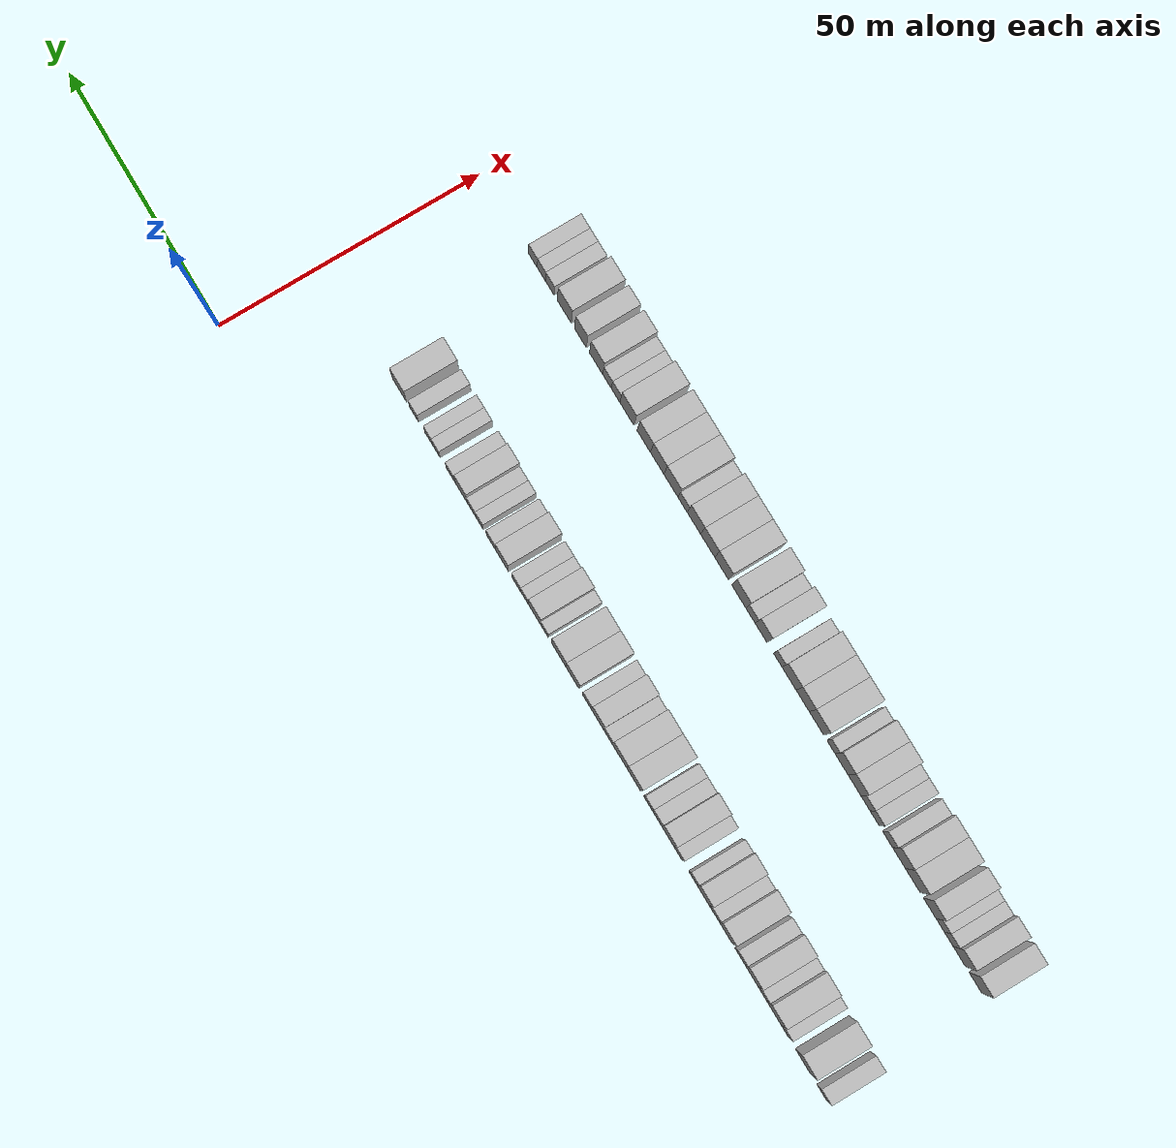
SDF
<sdf version="1.6">
 <world name="default">
  <model name="building_61">
   <static>1</static>
   <pose>25.0000 -156.1294 0 0.000000 0.000000 0.000000</pose>
   <link name="link">
    <pose>0 0 3.00 0 0 0</pose>
    <collision name="collision"><geometry><box><size>10.0000 2.9680 6.0000</size></box></geometry></collision>
    <visual name="visual">
     <cast_shadows>0</cast_shadows>
     <geometry><box><size>10.0000 2.9680 6.0000</size></box></geometry>
     <material>
      <script>
       <uri>model://HANNAS_wall/materials/scripts</uri>
       <uri>model://HANNAS_wall/materials/textures</uri>
       <name>vrc/HANNAS_wall</name>
      </script>
     </material>
    </visual>
   </link>
  </model>
  <model name="building_62">
   <static>1</static>
   <pose>25.0000 -150.4250 0 0.000000 0.000000 0.000000</pose>
   <link name="link">
    <pose>0 0 4.50 0 0 0</pose>
    <collision name="collision"><geometry><box><size>10.0000 4.4408 9.0000</size></box></geometry></collision>
    <visual name="visual">
     <cast_shadows>0</cast_shadows>
     <geometry><box><size>10.0000 4.4408 9.0000</size></box></geometry>
     <material>
      <script>
       <uri>model://HANNAS_wall/materials/scripts</uri>
       <uri>model://HANNAS_wall/materials/textures</uri>
       <name>vrc/HANNAS_wall</name>
      </script>
     </material>
    </visual>
   </link>
  </model>
  <model name="building_63">
   <static>1</static>
   <pose>25.0000 -144.9564 0 0.000000 0.000000 0.000000</pose>
   <link name="link">
    <pose>0 0 3.00 0 0 0</pose>
    <collision name="collision"><geometry><box><size>10.0000 2.4964 6.0000</size></box></geometry></collision>
    <visual name="visual">
     <cast_shadows>0</cast_shadows>
     <geometry><box><size>10.0000 2.4964 6.0000</size></box></geometry>
     <material>
      <script>
       <uri>model://HANNAS_wall/materials/scripts</uri>
       <uri>model://HANNAS_wall/materials/textures</uri>
       <name>vrc/HANNAS_wall</name>
      </script>
     </material>
    </visual>
   </link>
  </model>
  <model name="building_64">
   <static>1</static>
   <pose>25.0000 -141.5577 0 0.000000 0.000000 0.000000</pose>
   <link name="link">
    <pose>0 0 4.50 0 0 0</pose>
    <collision name="collision"><geometry><box><size>10.0000 4.3011 9.0000</size></box></geometry></collision>
    <visual name="visual">
     <cast_shadows>0</cast_shadows>
     <geometry><box><size>10.0000 4.3011 9.0000</size></box></geometry>
     <material>
      <script>
       <uri>model://HANNAS_wall/materials/scripts</uri>
       <uri>model://HANNAS_wall/materials/textures</uri>
       <name>vrc/HANNAS_wall</name>
      </script>
     </material>
    </visual>
   </link>
  </model>
  <model name="building_65">
   <static>1</static>
   <pose>25.0000 -138.0696 0 0.000000 0.000000 0.000000</pose>
   <link name="link">
    <pose>0 0 3.00 0 0 0</pose>
    <collision name="collision"><geometry><box><size>10.0000 2.6751 6.0000</size></box></geometry></collision>
    <visual name="visual">
     <cast_shadows>0</cast_shadows>
     <geometry><box><size>10.0000 2.6751 6.0000</size></box></geometry>
     <material>
      <script>
       <uri>model://HANNAS_wall/materials/scripts</uri>
       <uri>model://HANNAS_wall/materials/textures</uri>
       <name>vrc/HANNAS_wall</name>
      </script>
     </material>
    </visual>
   </link>
  </model>
  <model name="building_66">
   <static>1</static>
   <pose>25.0000 -134.7465 0 0.000000 0.000000 0.000000</pose>
   <link name="link">
    <pose>0 0 4.50 0 0 0</pose>
    <collision name="collision"><geometry><box><size>10.0000 3.9710 9.0000</size></box></geometry></collision>
    <visual name="visual">
     <cast_shadows>0</cast_shadows>
     <geometry><box><size>10.0000 3.9710 9.0000</size></box></geometry>
     <material>
      <script>
       <uri>model://HANNAS_wall/materials/scripts</uri>
       <uri>model://HANNAS_wall/materials/textures</uri>
       <name>vrc/HANNAS_wall</name>
      </script>
     </material>
    </visual>
   </link>
  </model>
  <model name="building_67">
   <static>1</static>
   <pose>25.0000 -131.3175 0 0.000000 0.000000 0.000000</pose>
   <link name="link">
    <pose>0 0 3.00 0 0 0</pose>
    <collision name="collision"><geometry><box><size>10.0000 2.8872 6.0000</size></box></geometry></collision>
    <visual name="visual">
     <cast_shadows>0</cast_shadows>
     <geometry><box><size>10.0000 2.8872 6.0000</size></box></geometry>
     <material>
      <script>
       <uri>model://HANNAS_wall/materials/scripts</uri>
       <uri>model://HANNAS_wall/materials/textures</uri>
       <name>vrc/HANNAS_wall</name>
      </script>
     </material>
    </visual>
   </link>
  </model>
  <model name="building_68">
   <static>1</static>
   <pose>25.0000 -126.8277 0 0.000000 0.000000 0.000000</pose>
   <link name="link">
    <pose>0 0 4.50 0 0 0</pose>
    <collision name="collision"><geometry><box><size>10.0000 4.0923 9.0000</size></box></geometry></collision>
    <visual name="visual">
     <cast_shadows>0</cast_shadows>
     <geometry><box><size>10.0000 4.0923 9.0000</size></box></geometry>
     <material>
      <script>
       <uri>model://HANNAS_wall/materials/scripts</uri>
       <uri>model://HANNAS_wall/materials/textures</uri>
       <name>vrc/HANNAS_wall</name>
      </script>
     </material>
    </visual>
   </link>
  </model>
  <model name="building_69">
   <static>1</static>
   <pose>25.0000 -123.3642 0 0.000000 0.000000 0.000000</pose>
   <link name="link">
    <pose>0 0 3.00 0 0 0</pose>
    <collision name="collision"><geometry><box><size>10.0000 2.8347 6.0000</size></box></geometry></collision>
    <visual name="visual">
     <cast_shadows>0</cast_shadows>
     <geometry><box><size>10.0000 2.8347 6.0000</size></box></geometry>
     <material>
      <script>
       <uri>model://HANNAS_wall/materials/scripts</uri>
       <uri>model://HANNAS_wall/materials/textures</uri>
       <name>vrc/HANNAS_wall</name>
      </script>
     </material>
    </visual>
   </link>
  </model>
  <model name="building_70">
   <static>1</static>
   <pose>25.0000 -120.0395 0 0.000000 0.000000 0.000000</pose>
   <link name="link">
    <pose>0 0 4.50 0 0 0</pose>
    <collision name="collision"><geometry><box><size>10.0000 3.8146 9.0000</size></box></geometry></collision>
    <visual name="visual">
     <cast_shadows>0</cast_shadows>
     <geometry><box><size>10.0000 3.8146 9.0000</size></box></geometry>
     <material>
      <script>
       <uri>model://HANNAS_wall/materials/scripts</uri>
       <uri>model://HANNAS_wall/materials/textures</uri>
       <name>vrc/HANNAS_wall</name>
      </script>
     </material>
    </visual>
   </link>
  </model>
  <model name="building_71">
   <static>1</static>
   <pose>25.0000 -116.9184 0 0.000000 0.000000 0.000000</pose>
   <link name="link">
    <pose>0 0 3.00 0 0 0</pose>
    <collision name="collision"><geometry><box><size>10.0000 2.4276 6.0000</size></box></geometry></collision>
    <visual name="visual">
     <cast_shadows>0</cast_shadows>
     <geometry><box><size>10.0000 2.4276 6.0000</size></box></geometry>
     <material>
      <script>
       <uri>model://HANNAS_wall/materials/scripts</uri>
       <uri>model://HANNAS_wall/materials/textures</uri>
       <name>vrc/HANNAS_wall</name>
      </script>
     </material>
    </visual>
   </link>
  </model>
  <model name="building_72">
   <static>1</static>
   <pose>25.0000 -112.4256 0 0.000000 0.000000 0.000000</pose>
   <link name="link">
    <pose>0 0 3.00 0 0 0</pose>
    <collision name="collision"><geometry><box><size>10.0000 2.5580 6.0000</size></box></geometry></collision>
    <visual name="visual">
     <cast_shadows>0</cast_shadows>
     <geometry><box><size>10.0000 2.5580 6.0000</size></box></geometry>
     <material>
      <script>
       <uri>model://HANNAS_wall/materials/scripts</uri>
       <uri>model://HANNAS_wall/materials/textures</uri>
       <name>vrc/HANNAS_wall</name>
      </script>
     </material>
    </visual>
   </link>
  </model>
  <model name="building_73">
   <static>1</static>
   <pose>25.0000 -109.1934 0 0.000000 0.000000 0.000000</pose>
   <link name="link">
    <pose>0 0 4.50 0 0 0</pose>
    <collision name="collision"><geometry><box><size>10.0000 3.9063 9.0000</size></box></geometry></collision>
    <visual name="visual">
     <cast_shadows>0</cast_shadows>
     <geometry><box><size>10.0000 3.9063 9.0000</size></box></geometry>
     <material>
      <script>
       <uri>model://HANNAS_wall/materials/scripts</uri>
       <uri>model://HANNAS_wall/materials/textures</uri>
       <name>vrc/HANNAS_wall</name>
      </script>
     </material>
    </visual>
   </link>
  </model>
  <model name="building_74">
   <static>1</static>
   <pose>25.0000 -105.8034 0 0.000000 0.000000 0.000000</pose>
   <link name="link">
    <pose>0 0 3.00 0 0 0</pose>
    <collision name="collision"><geometry><box><size>10.0000 2.8739 6.0000</size></box></geometry></collision>
    <visual name="visual">
     <cast_shadows>0</cast_shadows>
     <geometry><box><size>10.0000 2.8739 6.0000</size></box></geometry>
     <material>
      <script>
       <uri>model://HANNAS_wall/materials/scripts</uri>
       <uri>model://HANNAS_wall/materials/textures</uri>
       <name>vrc/HANNAS_wall</name>
      </script>
     </material>
    </visual>
   </link>
  </model>
  <model name="building_75">
   <static>1</static>
   <pose>25.0000 -103.0933 0 0.000000 0.000000 0.000000</pose>
   <link name="link">
    <pose>0 0 3.00 0 0 0</pose>
    <collision name="collision"><geometry><box><size>10.0000 2.5462 6.0000</size></box></geometry></collision>
    <visual name="visual">
     <cast_shadows>0</cast_shadows>
     <geometry><box><size>10.0000 2.5462 6.0000</size></box></geometry>
     <material>
      <script>
       <uri>model://HANNAS_wall/materials/scripts</uri>
       <uri>model://HANNAS_wall/materials/textures</uri>
       <name>vrc/HANNAS_wall</name>
      </script>
     </material>
    </visual>
   </link>
  </model>
  <model name="building_76">
   <static>1</static>
   <pose>25.0000 -98.6434 0 0.000000 0.000000 0.000000</pose>
   <link name="link">
    <pose>0 0 4.50 0 0 0</pose>
    <collision name="collision"><geometry><box><size>10.0000 4.3537 9.0000</size></box></geometry></collision>
    <visual name="visual">
     <cast_shadows>0</cast_shadows>
     <geometry><box><size>10.0000 4.3537 9.0000</size></box></geometry>
     <material>
      <script>
       <uri>model://HANNAS_wall/materials/scripts</uri>
       <uri>model://HANNAS_wall/materials/textures</uri>
       <name>vrc/HANNAS_wall</name>
      </script>
     </material>
    </visual>
   </link>
  </model>
  <model name="building_77">
   <static>1</static>
   <pose>25.0000 -94.2335 0 0.000000 0.000000 0.000000</pose>
   <link name="link">
    <pose>0 0 4.50 0 0 0</pose>
    <collision name="collision"><geometry><box><size>10.0000 4.4661 9.0000</size></box></geometry></collision>
    <visual name="visual">
     <cast_shadows>0</cast_shadows>
     <geometry><box><size>10.0000 4.4661 9.0000</size></box></geometry>
     <material>
      <script>
       <uri>model://HANNAS_wall/materials/scripts</uri>
       <uri>model://HANNAS_wall/materials/textures</uri>
       <name>vrc/HANNAS_wall</name>
      </script>
     </material>
    </visual>
   </link>
  </model>
  <model name="building_78">
   <static>1</static>
   <pose>25.0000 -90.6782 0 0.000000 0.000000 0.000000</pose>
   <link name="link">
    <pose>0 0 3.00 0 0 0</pose>
    <collision name="collision"><geometry><box><size>10.0000 2.6446 6.0000</size></box></geometry></collision>
    <visual name="visual">
     <cast_shadows>0</cast_shadows>
     <geometry><box><size>10.0000 2.6446 6.0000</size></box></geometry>
     <material>
      <script>
       <uri>model://HANNAS_wall/materials/scripts</uri>
       <uri>model://HANNAS_wall/materials/textures</uri>
       <name>vrc/HANNAS_wall</name>
      </script>
     </material>
    </visual>
   </link>
  </model>
  <model name="building_79">
   <static>1</static>
   <pose>25.0000 -87.4452 0 0.000000 0.000000 0.000000</pose>
   <link name="link">
    <pose>0 0 4.50 0 0 0</pose>
    <collision name="collision"><geometry><box><size>10.0000 3.8213 9.0000</size></box></geometry></collision>
    <visual name="visual">
     <cast_shadows>0</cast_shadows>
     <geometry><box><size>10.0000 3.8213 9.0000</size></box></geometry>
     <material>
      <script>
       <uri>model://HANNAS_wall/materials/scripts</uri>
       <uri>model://HANNAS_wall/materials/textures</uri>
       <name>vrc/HANNAS_wall</name>
      </script>
     </material>
    </visual>
   </link>
  </model>
  <model name="building_80">
   <static>1</static>
   <pose>25.0000 -84.1160 0 0.000000 0.000000 0.000000</pose>
   <link name="link">
    <pose>0 0 3.00 0 0 0</pose>
    <collision name="collision"><geometry><box><size>10.0000 2.8373 6.0000</size></box></geometry></collision>
    <visual name="visual">
     <cast_shadows>0</cast_shadows>
     <geometry><box><size>10.0000 2.8373 6.0000</size></box></geometry>
     <material>
      <script>
       <uri>model://HANNAS_wall/materials/scripts</uri>
       <uri>model://HANNAS_wall/materials/textures</uri>
       <name>vrc/HANNAS_wall</name>
      </script>
     </material>
    </visual>
   </link>
  </model>
  <model name="building_81">
   <static>1</static>
   <pose>25.0000 -79.6131 0 0.000000 0.000000 0.000000</pose>
   <link name="link">
    <pose>0 0 4.50 0 0 0</pose>
    <collision name="collision"><geometry><box><size>10.0000 4.1684 9.0000</size></box></geometry></collision>
    <visual name="visual">
     <cast_shadows>0</cast_shadows>
     <geometry><box><size>10.0000 4.1684 9.0000</size></box></geometry>
     <material>
      <script>
       <uri>model://HANNAS_wall/materials/scripts</uri>
       <uri>model://HANNAS_wall/materials/textures</uri>
       <name>vrc/HANNAS_wall</name>
      </script>
     </material>
    </visual>
   </link>
  </model>
  <model name="building_82">
   <static>1</static>
   <pose>25.0000 -75.2812 0 0.000000 0.000000 0.000000</pose>
   <link name="link">
    <pose>0 0 4.50 0 0 0</pose>
    <collision name="collision"><geometry><box><size>10.0000 4.4954 9.0000</size></box></geometry></collision>
    <visual name="visual">
     <cast_shadows>0</cast_shadows>
     <geometry><box><size>10.0000 4.4954 9.0000</size></box></geometry>
     <material>
      <script>
       <uri>model://HANNAS_wall/materials/scripts</uri>
       <uri>model://HANNAS_wall/materials/textures</uri>
       <name>vrc/HANNAS_wall</name>
      </script>
     </material>
    </visual>
   </link>
  </model>
  <model name="building_83">
   <static>1</static>
   <pose>25.0000 -70.8143 0 0.000000 0.000000 0.000000</pose>
   <link name="link">
    <pose>0 0 3.00 0 0 0</pose>
    <collision name="collision"><geometry><box><size>10.0000 2.4383 6.0000</size></box></geometry></collision>
    <visual name="visual">
     <cast_shadows>0</cast_shadows>
     <geometry><box><size>10.0000 2.4383 6.0000</size></box></geometry>
     <material>
      <script>
       <uri>model://HANNAS_wall/materials/scripts</uri>
       <uri>model://HANNAS_wall/materials/textures</uri>
       <name>vrc/HANNAS_wall</name>
      </script>
     </material>
    </visual>
   </link>
  </model>
  <model name="building_84">
   <static>1</static>
   <pose>25.0000 -67.6810 0 0.000000 0.000000 0.000000</pose>
   <link name="link">
    <pose>0 0 4.50 0 0 0</pose>
    <collision name="collision"><geometry><box><size>10.0000 3.8284 9.0000</size></box></geometry></collision>
    <visual name="visual">
     <cast_shadows>0</cast_shadows>
     <geometry><box><size>10.0000 3.8284 9.0000</size></box></geometry>
     <material>
      <script>
       <uri>model://HANNAS_wall/materials/scripts</uri>
       <uri>model://HANNAS_wall/materials/textures</uri>
       <name>vrc/HANNAS_wall</name>
      </script>
     </material>
    </visual>
   </link>
  </model>
  <model name="building_85">
   <static>1</static>
   <pose>25.0000 -64.5476 0 0.000000 0.000000 0.000000</pose>
   <link name="link">
    <pose>0 0 3.00 0 0 0</pose>
    <collision name="collision"><geometry><box><size>10.0000 2.4383 6.0000</size></box></geometry></collision>
    <visual name="visual">
     <cast_shadows>0</cast_shadows>
     <geometry><box><size>10.0000 2.4383 6.0000</size></box></geometry>
     <material>
      <script>
       <uri>model://HANNAS_wall/materials/scripts</uri>
       <uri>model://HANNAS_wall/materials/textures</uri>
       <name>vrc/HANNAS_wall</name>
      </script>
     </material>
    </visual>
   </link>
  </model>
  <model name="building_86">
   <static>1</static>
   <pose>25.0000 -61.9254 0 0.000000 0.000000 0.000000</pose>
   <link name="link">
    <pose>0 0 3.00 0 0 0</pose>
    <collision name="collision"><geometry><box><size>10.0000 2.8062 6.0000</size></box></geometry></collision>
    <visual name="visual">
     <cast_shadows>0</cast_shadows>
     <geometry><box><size>10.0000 2.8062 6.0000</size></box></geometry>
     <material>
      <script>
       <uri>model://HANNAS_wall/materials/scripts</uri>
       <uri>model://HANNAS_wall/materials/textures</uri>
       <name>vrc/HANNAS_wall</name>
      </script>
     </material>
    </visual>
   </link>
  </model>
  <model name="building_87">
   <static>1</static>
   <pose>25.0000 -57.5002 0 0.000000 0.000000 0.000000</pose>
   <link name="link">
    <pose>0 0 4.50 0 0 0</pose>
    <collision name="collision"><geometry><box><size>10.0000 4.0442 9.0000</size></box></geometry></collision>
    <visual name="visual">
     <cast_shadows>0</cast_shadows>
     <geometry><box><size>10.0000 4.0442 9.0000</size></box></geometry>
     <material>
      <script>
       <uri>model://HANNAS_wall/materials/scripts</uri>
       <uri>model://HANNAS_wall/materials/textures</uri>
       <name>vrc/HANNAS_wall</name>
      </script>
     </material>
    </visual>
   </link>
  </model>
  <model name="building_88">
   <static>1</static>
   <pose>25.0000 -53.9953 0 0.000000 0.000000 0.000000</pose>
   <link name="link">
    <pose>0 0 3.00 0 0 0</pose>
    <collision name="collision"><geometry><box><size>10.0000 2.9656 6.0000</size></box></geometry></collision>
    <visual name="visual">
     <cast_shadows>0</cast_shadows>
     <geometry><box><size>10.0000 2.9656 6.0000</size></box></geometry>
     <material>
      <script>
       <uri>model://HANNAS_wall/materials/scripts</uri>
       <uri>model://HANNAS_wall/materials/textures</uri>
       <name>vrc/HANNAS_wall</name>
      </script>
     </material>
    </visual>
   </link>
  </model>
  <model name="building_89">
   <static>1</static>
   <pose>25.0000 -50.2899 0 0.000000 0.000000 0.000000</pose>
   <link name="link">
    <pose>0 0 3.00 0 0 0</pose>
    <collision name="collision"><geometry><box><size>10.0000 2.4452 6.0000</size></box></geometry></collision>
    <visual name="visual">
     <cast_shadows>0</cast_shadows>
     <geometry><box><size>10.0000 2.4452 6.0000</size></box></geometry>
     <material>
      <script>
       <uri>model://HANNAS_wall/materials/scripts</uri>
       <uri>model://HANNAS_wall/materials/textures</uri>
       <name>vrc/HANNAS_wall</name>
      </script>
     </material>
    </visual>
   </link>
  </model>
  <model name="building_90">
   <static>1</static>
   <pose>25.0000 -47.7141 0 0.000000 0.000000 0.000000</pose>
   <link name="link">
    <pose>0 0 3.00 0 0 0</pose>
    <collision name="collision"><geometry><box><size>10.0000 2.7063 6.0000</size></box></geometry></collision>
    <visual name="visual">
     <cast_shadows>0</cast_shadows>
     <geometry><box><size>10.0000 2.7063 6.0000</size></box></geometry>
     <material>
      <script>
       <uri>model://HANNAS_wall/materials/scripts</uri>
       <uri>model://HANNAS_wall/materials/textures</uri>
       <name>vrc/HANNAS_wall</name>
      </script>
     </material>
    </visual>
   </link>
  </model>
  <model name="building_91">
   <static>1</static>
   <pose>25.0000 -44.4974 0 0.000000 0.000000 0.000000</pose>
   <link name="link">
    <pose>0 0 4.50 0 0 0</pose>
    <collision name="collision"><geometry><box><size>10.0000 3.7271 9.0000</size></box></geometry></collision>
    <visual name="visual">
     <cast_shadows>0</cast_shadows>
     <geometry><box><size>10.0000 3.7271 9.0000</size></box></geometry>
     <material>
      <script>
       <uri>model://HANNAS_wall/materials/scripts</uri>
       <uri>model://HANNAS_wall/materials/textures</uri>
       <name>vrc/HANNAS_wall</name>
      </script>
     </material>
    </visual>
   </link>
  </model>
  <model name="building_92">
   <static>1</static>
   <pose>25.0000 -41.1567 0 0.000000 0.000000 0.000000</pose>
   <link name="link">
    <pose>0 0 3.00 0 0 0</pose>
    <collision name="collision"><geometry><box><size>10.0000 2.9543 6.0000</size></box></geometry></collision>
    <visual name="visual">
     <cast_shadows>0</cast_shadows>
     <geometry><box><size>10.0000 2.9543 6.0000</size></box></geometry>
     <material>
      <script>
       <uri>model://HANNAS_wall/materials/scripts</uri>
       <uri>model://HANNAS_wall/materials/textures</uri>
       <name>vrc/HANNAS_wall</name>
      </script>
     </material>
    </visual>
   </link>
  </model>
  <model name="building_93">
   <static>1</static>
   <pose>25.0000 -36.4481 0 0.000000 0.000000 0.000000</pose>
   <link name="link">
    <pose>0 0 3.00 0 0 0</pose>
    <collision name="collision"><geometry><box><size>10.0000 2.4631 6.0000</size></box></geometry></collision>
    <visual name="visual">
     <cast_shadows>0</cast_shadows>
     <geometry><box><size>10.0000 2.4631 6.0000</size></box></geometry>
     <material>
      <script>
       <uri>model://HANNAS_wall/materials/scripts</uri>
       <uri>model://HANNAS_wall/materials/textures</uri>
       <name>vrc/HANNAS_wall</name>
      </script>
     </material>
    </visual>
   </link>
  </model>
  <model name="building_94">
   <static>1</static>
   <pose>25.0000 -34.0037 0 0.000000 0.000000 0.000000</pose>
   <link name="link">
    <pose>0 0 3.00 0 0 0</pose>
    <collision name="collision"><geometry><box><size>10.0000 2.4257 6.0000</size></box></geometry></collision>
    <visual name="visual">
     <cast_shadows>0</cast_shadows>
     <geometry><box><size>10.0000 2.4257 6.0000</size></box></geometry>
     <material>
      <script>
       <uri>model://HANNAS_wall/materials/scripts</uri>
       <uri>model://HANNAS_wall/materials/textures</uri>
       <name>vrc/HANNAS_wall</name>
      </script>
     </material>
    </visual>
   </link>
  </model>
  <model name="building_95">
   <static>1</static>
   <pose>25.0000 -29.3532 0 0.000000 0.000000 0.000000</pose>
   <link name="link">
    <pose>0 0 3.00 0 0 0</pose>
    <collision name="collision"><geometry><box><size>10.0000 2.8752 6.0000</size></box></geometry></collision>
    <visual name="visual">
     <cast_shadows>0</cast_shadows>
     <geometry><box><size>10.0000 2.8752 6.0000</size></box></geometry>
     <material>
      <script>
       <uri>model://HANNAS_wall/materials/scripts</uri>
       <uri>model://HANNAS_wall/materials/textures</uri>
       <name>vrc/HANNAS_wall</name>
      </script>
     </material>
    </visual>
   </link>
  </model>
  <model name="building_96">
   <static>1</static>
   <pose>25.0000 -24.6713 0 0.000000 0.000000 0.000000</pose>
   <link name="link">
    <pose>0 0 4.50 0 0 0</pose>
    <collision name="collision"><geometry><box><size>10.0000 4.4886 9.0000</size></box></geometry></collision>
    <visual name="visual">
     <cast_shadows>0</cast_shadows>
     <geometry><box><size>10.0000 4.4886 9.0000</size></box></geometry>
     <material>
      <script>
       <uri>model://HANNAS_wall/materials/scripts</uri>
       <uri>model://HANNAS_wall/materials/textures</uri>
       <name>vrc/HANNAS_wall</name>
      </script>
     </material>
    </visual>
   </link>
  </model>
  <model name="building_282">
   <static>1</static>
   <pose>55.0000 -154.1525 0 0.000000 0.000000 0.000000</pose>
   <link name="link">
    <pose>0 0 4.50 0 0 0</pose>
    <collision name="collision"><geometry><box><size>10.0000 3.8440 9.0000</size></box></geometry></collision>
    <visual name="visual">
     <cast_shadows>0</cast_shadows>
     <geometry><box><size>10.0000 3.8440 9.0000</size></box></geometry>
     <material>
      <script>
       <uri>model://HANNAS_wall/materials/scripts</uri>
       <uri>model://HANNAS_wall/materials/textures</uri>
       <name>vrc/HANNAS_wall</name>
      </script>
     </material>
    </visual>
   </link>
  </model>
  <model name="building_283">
   <static>1</static>
   <pose>55.0000 -149.3492 0 0.000000 0.000000 0.000000</pose>
   <link name="link">
    <pose>0 0 4.50 0 0 0</pose>
    <collision name="collision"><geometry><box><size>10.0000 3.7626 9.0000</size></box></geometry></collision>
    <visual name="visual">
     <cast_shadows>0</cast_shadows>
     <geometry><box><size>10.0000 3.7626 9.0000</size></box></geometry>
     <material>
      <script>
       <uri>model://HANNAS_wall/materials/scripts</uri>
       <uri>model://HANNAS_wall/materials/textures</uri>
       <name>vrc/HANNAS_wall</name>
      </script>
     </material>
    </visual>
   </link>
  </model>
  <model name="building_284">
   <static>1</static>
   <pose>55.0000 -146.1577 0 0.000000 0.000000 0.000000</pose>
   <link name="link">
    <pose>0 0 3.00 0 0 0</pose>
    <collision name="collision"><geometry><box><size>10.0000 2.6203 6.0000</size></box></geometry></collision>
    <visual name="visual">
     <cast_shadows>0</cast_shadows>
     <geometry><box><size>10.0000 2.6203 6.0000</size></box></geometry>
     <material>
      <script>
       <uri>model://HANNAS_wall/materials/scripts</uri>
       <uri>model://HANNAS_wall/materials/textures</uri>
       <name>vrc/HANNAS_wall</name>
      </script>
     </material>
    </visual>
   </link>
  </model>
  <model name="building_285">
   <static>1</static>
   <pose>55.0000 -143.5954 0 0.000000 0.000000 0.000000</pose>
   <link name="link">
    <pose>0 0 3.00 0 0 0</pose>
    <collision name="collision"><geometry><box><size>10.0000 2.5044 6.0000</size></box></geometry></collision>
    <visual name="visual">
     <cast_shadows>0</cast_shadows>
     <geometry><box><size>10.0000 2.5044 6.0000</size></box></geometry>
     <material>
      <script>
       <uri>model://HANNAS_wall/materials/scripts</uri>
       <uri>model://HANNAS_wall/materials/textures</uri>
       <name>vrc/HANNAS_wall</name>
      </script>
     </material>
    </visual>
   </link>
  </model>
  <model name="building_286">
   <static>1</static>
   <pose>55.0000 -140.4882 0 0.000000 0.000000 0.000000</pose>
   <link name="link">
    <pose>0 0 4.50 0 0 0</pose>
    <collision name="collision"><geometry><box><size>10.0000 3.7100 9.0000</size></box></geometry></collision>
    <visual name="visual">
     <cast_shadows>0</cast_shadows>
     <geometry><box><size>10.0000 3.7100 9.0000</size></box></geometry>
     <material>
      <script>
       <uri>model://HANNAS_wall/materials/scripts</uri>
       <uri>model://HANNAS_wall/materials/textures</uri>
       <name>vrc/HANNAS_wall</name>
      </script>
     </material>
    </visual>
   </link>
  </model>
  <model name="building_287">
   <static>1</static>
   <pose>55.0000 -135.3972 0 0.000000 0.000000 0.000000</pose>
   <link name="link">
    <pose>0 0 4.50 0 0 0</pose>
    <collision name="collision"><geometry><box><size>10.0000 4.4721 9.0000</size></box></geometry></collision>
    <visual name="visual">
     <cast_shadows>0</cast_shadows>
     <geometry><box><size>10.0000 4.4721 9.0000</size></box></geometry>
     <material>
      <script>
       <uri>model://HANNAS_wall/materials/scripts</uri>
       <uri>model://HANNAS_wall/materials/textures</uri>
       <name>vrc/HANNAS_wall</name>
      </script>
     </material>
    </visual>
   </link>
  </model>
  <model name="building_288">
   <static>1</static>
   <pose>55.0000 -131.2111 0 0.000000 0.000000 0.000000</pose>
   <link name="link">
    <pose>0 0 4.50 0 0 0</pose>
    <collision name="collision"><geometry><box><size>10.0000 3.9000 9.0000</size></box></geometry></collision>
    <visual name="visual">
     <cast_shadows>0</cast_shadows>
     <geometry><box><size>10.0000 3.9000 9.0000</size></box></geometry>
     <material>
      <script>
       <uri>model://HANNAS_wall/materials/scripts</uri>
       <uri>model://HANNAS_wall/materials/textures</uri>
       <name>vrc/HANNAS_wall</name>
      </script>
     </material>
    </visual>
   </link>
  </model>
  <model name="building_289">
   <static>1</static>
   <pose>55.0000 -127.7800 0 0.000000 0.000000 0.000000</pose>
   <link name="link">
    <pose>0 0 3.00 0 0 0</pose>
    <collision name="collision"><geometry><box><size>10.0000 2.9624 6.0000</size></box></geometry></collision>
    <visual name="visual">
     <cast_shadows>0</cast_shadows>
     <geometry><box><size>10.0000 2.9624 6.0000</size></box></geometry>
     <material>
      <script>
       <uri>model://HANNAS_wall/materials/scripts</uri>
       <uri>model://HANNAS_wall/materials/textures</uri>
       <name>vrc/HANNAS_wall</name>
      </script>
     </material>
    </visual>
   </link>
  </model>
  <model name="building_290">
   <static>1</static>
   <pose>55.0000 -123.8946 0 0.000000 0.000000 0.000000</pose>
   <link name="link">
    <pose>0 0 3.00 0 0 0</pose>
    <collision name="collision"><geometry><box><size>10.0000 2.8083 6.0000</size></box></geometry></collision>
    <visual name="visual">
     <cast_shadows>0</cast_shadows>
     <geometry><box><size>10.0000 2.8083 6.0000</size></box></geometry>
     <material>
      <script>
       <uri>model://HANNAS_wall/materials/scripts</uri>
       <uri>model://HANNAS_wall/materials/textures</uri>
       <name>vrc/HANNAS_wall</name>
      </script>
     </material>
    </visual>
   </link>
  </model>
  <model name="building_291">
   <static>1</static>
   <pose>55.0000 -121.0653 0 0.000000 0.000000 0.000000</pose>
   <link name="link">
    <pose>0 0 3.00 0 0 0</pose>
    <collision name="collision"><geometry><box><size>10.0000 2.8504 6.0000</size></box></geometry></collision>
    <visual name="visual">
     <cast_shadows>0</cast_shadows>
     <geometry><box><size>10.0000 2.8504 6.0000</size></box></geometry>
     <material>
      <script>
       <uri>model://HANNAS_wall/materials/scripts</uri>
       <uri>model://HANNAS_wall/materials/textures</uri>
       <name>vrc/HANNAS_wall</name>
      </script>
     </material>
    </visual>
   </link>
  </model>
  <model name="building_292">
   <static>1</static>
   <pose>55.0000 -117.7236 0 0.000000 0.000000 0.000000</pose>
   <link name="link">
    <pose>0 0 4.50 0 0 0</pose>
    <collision name="collision"><geometry><box><size>10.0000 3.8330 9.0000</size></box></geometry></collision>
    <visual name="visual">
     <cast_shadows>0</cast_shadows>
     <geometry><box><size>10.0000 3.8330 9.0000</size></box></geometry>
     <material>
      <script>
       <uri>model://HANNAS_wall/materials/scripts</uri>
       <uri>model://HANNAS_wall/materials/textures</uri>
       <name>vrc/HANNAS_wall</name>
      </script>
     </material>
    </visual>
   </link>
  </model>
  <model name="building_293">
   <static>1</static>
   <pose>55.0000 -113.8417 0 0.000000 0.000000 0.000000</pose>
   <link name="link">
    <pose>0 0 4.50 0 0 0</pose>
    <collision name="collision"><geometry><box><size>10.0000 3.9307 9.0000</size></box></geometry></collision>
    <visual name="visual">
     <cast_shadows>0</cast_shadows>
     <geometry><box><size>10.0000 3.9307 9.0000</size></box></geometry>
     <material>
      <script>
       <uri>model://HANNAS_wall/materials/scripts</uri>
       <uri>model://HANNAS_wall/materials/textures</uri>
       <name>vrc/HANNAS_wall</name>
      </script>
     </material>
    </visual>
   </link>
  </model>
  <model name="building_294">
   <static>1</static>
   <pose>55.0000 -110.6162 0 0.000000 0.000000 0.000000</pose>
   <link name="link">
    <pose>0 0 3.00 0 0 0</pose>
    <collision name="collision"><geometry><box><size>10.0000 2.5203 6.0000</size></box></geometry></collision>
    <visual name="visual">
     <cast_shadows>0</cast_shadows>
     <geometry><box><size>10.0000 2.5203 6.0000</size></box></geometry>
     <material>
      <script>
       <uri>model://HANNAS_wall/materials/scripts</uri>
       <uri>model://HANNAS_wall/materials/textures</uri>
       <name>vrc/HANNAS_wall</name>
      </script>
     </material>
    </visual>
   </link>
  </model>
  <model name="building_295">
   <static>1</static>
   <pose>55.0000 -106.1667 0 0.000000 0.000000 0.000000</pose>
   <link name="link">
    <pose>0 0 4.50 0 0 0</pose>
    <collision name="collision"><geometry><box><size>10.0000 4.3788 9.0000</size></box></geometry></collision>
    <visual name="visual">
     <cast_shadows>0</cast_shadows>
     <geometry><box><size>10.0000 4.3788 9.0000</size></box></geometry>
     <material>
      <script>
       <uri>model://HANNAS_wall/materials/scripts</uri>
       <uri>model://HANNAS_wall/materials/textures</uri>
       <name>vrc/HANNAS_wall</name>
      </script>
     </material>
    </visual>
   </link>
  </model>
  <model name="building_296">
   <static>1</static>
   <pose>55.0000 -101.9454 0 0.000000 0.000000 0.000000</pose>
   <link name="link">
    <pose>0 0 4.50 0 0 0</pose>
    <collision name="collision"><geometry><box><size>10.0000 4.0638 9.0000</size></box></geometry></collision>
    <visual name="visual">
     <cast_shadows>0</cast_shadows>
     <geometry><box><size>10.0000 4.0638 9.0000</size></box></geometry>
     <material>
      <script>
       <uri>model://HANNAS_wall/materials/scripts</uri>
       <uri>model://HANNAS_wall/materials/textures</uri>
       <name>vrc/HANNAS_wall</name>
      </script>
     </material>
    </visual>
   </link>
  </model>
  <model name="building_297">
   <static>1</static>
   <pose>55.0000 -97.7588 0 0.000000 0.000000 0.000000</pose>
   <link name="link">
    <pose>0 0 4.50 0 0 0</pose>
    <collision name="collision"><geometry><box><size>10.0000 4.3094 9.0000</size></box></geometry></collision>
    <visual name="visual">
     <cast_shadows>0</cast_shadows>
     <geometry><box><size>10.0000 4.3094 9.0000</size></box></geometry>
     <material>
      <script>
       <uri>model://HANNAS_wall/materials/scripts</uri>
       <uri>model://HANNAS_wall/materials/textures</uri>
       <name>vrc/HANNAS_wall</name>
      </script>
     </material>
    </visual>
   </link>
  </model>
  <model name="building_298">
   <static>1</static>
   <pose>55.0000 -94.2918 0 0.000000 0.000000 0.000000</pose>
   <link name="link">
    <pose>0 0 3.00 0 0 0</pose>
    <collision name="collision"><geometry><box><size>10.0000 2.6247 6.0000</size></box></geometry></collision>
    <visual name="visual">
     <cast_shadows>0</cast_shadows>
     <geometry><box><size>10.0000 2.6247 6.0000</size></box></geometry>
     <material>
      <script>
       <uri>model://HANNAS_wall/materials/scripts</uri>
       <uri>model://HANNAS_wall/materials/textures</uri>
       <name>vrc/HANNAS_wall</name>
      </script>
     </material>
    </visual>
   </link>
  </model>
  <model name="building_299">
   <static>1</static>
   <pose>55.0000 -89.1544 0 0.000000 0.000000 0.000000</pose>
   <link name="link">
    <pose>0 0 4.50 0 0 0</pose>
    <collision name="collision"><geometry><box><size>10.0000 3.6501 9.0000</size></box></geometry></collision>
    <visual name="visual">
     <cast_shadows>0</cast_shadows>
     <geometry><box><size>10.0000 3.6501 9.0000</size></box></geometry>
     <material>
      <script>
       <uri>model://HANNAS_wall/materials/scripts</uri>
       <uri>model://HANNAS_wall/materials/textures</uri>
       <name>vrc/HANNAS_wall</name>
      </script>
     </material>
    </visual>
   </link>
  </model>
  <model name="building_300">
   <static>1</static>
   <pose>55.0000 -85.8887 0 0.000000 0.000000 0.000000</pose>
   <link name="link">
    <pose>0 0 3.00 0 0 0</pose>
    <collision name="collision"><geometry><box><size>10.0000 2.8813 6.0000</size></box></geometry></collision>
    <visual name="visual">
     <cast_shadows>0</cast_shadows>
     <geometry><box><size>10.0000 2.8813 6.0000</size></box></geometry>
     <material>
      <script>
       <uri>model://HANNAS_wall/materials/scripts</uri>
       <uri>model://HANNAS_wall/materials/textures</uri>
       <name>vrc/HANNAS_wall</name>
      </script>
     </material>
    </visual>
   </link>
  </model>
  <model name="building_301">
   <static>1</static>
   <pose>55.0000 -82.2482 0 0.000000 0.000000 0.000000</pose>
   <link name="link">
    <pose>0 0 4.50 0 0 0</pose>
    <collision name="collision"><geometry><box><size>10.0000 4.3996 9.0000</size></box></geometry></collision>
    <visual name="visual">
     <cast_shadows>0</cast_shadows>
     <geometry><box><size>10.0000 4.3996 9.0000</size></box></geometry>
     <material>
      <script>
       <uri>model://HANNAS_wall/materials/scripts</uri>
       <uri>model://HANNAS_wall/materials/textures</uri>
       <name>vrc/HANNAS_wall</name>
      </script>
     </material>
    </visual>
   </link>
  </model>
  <model name="building_302">
   <static>1</static>
   <pose>55.0000 -76.9195 0 0.000000 0.000000 0.000000</pose>
   <link name="link">
    <pose>0 0 4.50 0 0 0</pose>
    <collision name="collision"><geometry><box><size>10.0000 4.2577 9.0000</size></box></geometry></collision>
    <visual name="visual">
     <cast_shadows>0</cast_shadows>
     <geometry><box><size>10.0000 4.2577 9.0000</size></box></geometry>
     <material>
      <script>
       <uri>model://HANNAS_wall/materials/scripts</uri>
       <uri>model://HANNAS_wall/materials/textures</uri>
       <name>vrc/HANNAS_wall</name>
      </script>
     </material>
    </visual>
   </link>
  </model>
  <model name="building_303">
   <static>1</static>
   <pose>55.0000 -72.5848 0 0.000000 0.000000 0.000000</pose>
   <link name="link">
    <pose>0 0 4.50 0 0 0</pose>
    <collision name="collision"><geometry><box><size>10.0000 4.4117 9.0000</size></box></geometry></collision>
    <visual name="visual">
     <cast_shadows>0</cast_shadows>
     <geometry><box><size>10.0000 4.4117 9.0000</size></box></geometry>
     <material>
      <script>
       <uri>model://HANNAS_wall/materials/scripts</uri>
       <uri>model://HANNAS_wall/materials/textures</uri>
       <name>vrc/HANNAS_wall</name>
      </script>
     </material>
    </visual>
   </link>
  </model>
  <model name="building_304">
   <static>1</static>
   <pose>55.0000 -68.2902 0 0.000000 0.000000 0.000000</pose>
   <link name="link">
    <pose>0 0 4.50 0 0 0</pose>
    <collision name="collision"><geometry><box><size>10.0000 4.1777 9.0000</size></box></geometry></collision>
    <visual name="visual">
     <cast_shadows>0</cast_shadows>
     <geometry><box><size>10.0000 4.1777 9.0000</size></box></geometry>
     <material>
      <script>
       <uri>model://HANNAS_wall/materials/scripts</uri>
       <uri>model://HANNAS_wall/materials/textures</uri>
       <name>vrc/HANNAS_wall</name>
      </script>
     </material>
    </visual>
   </link>
  </model>
  <model name="building_305">
   <static>1</static>
   <pose>55.0000 -64.7321 0 0.000000 0.000000 0.000000</pose>
   <link name="link">
    <pose>0 0 3.00 0 0 0</pose>
    <collision name="collision"><geometry><box><size>10.0000 2.9386 6.0000</size></box></geometry></collision>
    <visual name="visual">
     <cast_shadows>0</cast_shadows>
     <geometry><box><size>10.0000 2.9386 6.0000</size></box></geometry>
     <material>
      <script>
       <uri>model://HANNAS_wall/materials/scripts</uri>
       <uri>model://HANNAS_wall/materials/textures</uri>
       <name>vrc/HANNAS_wall</name>
      </script>
     </material>
    </visual>
   </link>
  </model>
  <model name="building_306">
   <static>1</static>
   <pose>55.0000 -61.0533 0 0.000000 0.000000 0.000000</pose>
   <link name="link">
    <pose>0 0 4.50 0 0 0</pose>
    <collision name="collision"><geometry><box><size>10.0000 4.4190 9.0000</size></box></geometry></collision>
    <visual name="visual">
     <cast_shadows>0</cast_shadows>
     <geometry><box><size>10.0000 4.4190 9.0000</size></box></geometry>
     <material>
      <script>
       <uri>model://HANNAS_wall/materials/scripts</uri>
       <uri>model://HANNAS_wall/materials/textures</uri>
       <name>vrc/HANNAS_wall</name>
      </script>
     </material>
    </visual>
   </link>
  </model>
  <model name="building_307">
   <static>1</static>
   <pose>55.0000 -56.7287 0 0.000000 0.000000 0.000000</pose>
   <link name="link">
    <pose>0 0 4.50 0 0 0</pose>
    <collision name="collision"><geometry><box><size>10.0000 4.2302 9.0000</size></box></geometry></collision>
    <visual name="visual">
     <cast_shadows>0</cast_shadows>
     <geometry><box><size>10.0000 4.2302 9.0000</size></box></geometry>
     <material>
      <script>
       <uri>model://HANNAS_wall/materials/scripts</uri>
       <uri>model://HANNAS_wall/materials/textures</uri>
       <name>vrc/HANNAS_wall</name>
      </script>
     </material>
    </visual>
   </link>
  </model>
  <model name="building_308">
   <static>1</static>
   <pose>55.0000 -52.5028 0 0.000000 0.000000 0.000000</pose>
   <link name="link">
    <pose>0 0 4.50 0 0 0</pose>
    <collision name="collision"><geometry><box><size>10.0000 4.2215 9.0000</size></box></geometry></collision>
    <visual name="visual">
     <cast_shadows>0</cast_shadows>
     <geometry><box><size>10.0000 4.2215 9.0000</size></box></geometry>
     <material>
      <script>
       <uri>model://HANNAS_wall/materials/scripts</uri>
       <uri>model://HANNAS_wall/materials/textures</uri>
       <name>vrc/HANNAS_wall</name>
      </script>
     </material>
    </visual>
   </link>
  </model>
  <model name="building_309">
   <static>1</static>
   <pose>55.0000 -47.1692 0 0.000000 0.000000 0.000000</pose>
   <link name="link">
    <pose>0 0 4.50 0 0 0</pose>
    <collision name="collision"><geometry><box><size>10.0000 4.4458 9.0000</size></box></geometry></collision>
    <visual name="visual">
     <cast_shadows>0</cast_shadows>
     <geometry><box><size>10.0000 4.4458 9.0000</size></box></geometry>
     <material>
      <script>
       <uri>model://HANNAS_wall/materials/scripts</uri>
       <uri>model://HANNAS_wall/materials/textures</uri>
       <name>vrc/HANNAS_wall</name>
      </script>
     </material>
    </visual>
   </link>
  </model>
  <model name="building_310">
   <static>1</static>
   <pose>55.0000 -43.5794 0 0.000000 0.000000 0.000000</pose>
   <link name="link">
    <pose>0 0 3.00 0 0 0</pose>
    <collision name="collision"><geometry><box><size>10.0000 2.7338 6.0000</size></box></geometry></collision>
    <visual name="visual">
     <cast_shadows>0</cast_shadows>
     <geometry><box><size>10.0000 2.7338 6.0000</size></box></geometry>
     <material>
      <script>
       <uri>model://HANNAS_wall/materials/scripts</uri>
       <uri>model://HANNAS_wall/materials/textures</uri>
       <name>vrc/HANNAS_wall</name>
      </script>
     </material>
    </visual>
   </link>
  </model>
  <model name="building_311">
   <static>1</static>
   <pose>55.0000 -40.8485 0 0.000000 0.000000 0.000000</pose>
   <link name="link">
    <pose>0 0 3.00 0 0 0</pose>
    <collision name="collision"><geometry><box><size>10.0000 2.7279 6.0000</size></box></geometry></collision>
    <visual name="visual">
     <cast_shadows>0</cast_shadows>
     <geometry><box><size>10.0000 2.7279 6.0000</size></box></geometry>
     <material>
      <script>
       <uri>model://HANNAS_wall/materials/scripts</uri>
       <uri>model://HANNAS_wall/materials/textures</uri>
       <name>vrc/HANNAS_wall</name>
      </script>
     </material>
    </visual>
   </link>
  </model>
  <model name="building_312">
   <static>1</static>
   <pose>55.0000 -37.3839 0 0.000000 0.000000 0.000000</pose>
   <link name="link">
    <pose>0 0 4.50 0 0 0</pose>
    <collision name="collision"><geometry><box><size>10.0000 4.2014 9.0000</size></box></geometry></collision>
    <visual name="visual">
     <cast_shadows>0</cast_shadows>
     <geometry><box><size>10.0000 4.2014 9.0000</size></box></geometry>
     <material>
      <script>
       <uri>model://HANNAS_wall/materials/scripts</uri>
       <uri>model://HANNAS_wall/materials/textures</uri>
       <name>vrc/HANNAS_wall</name>
      </script>
     </material>
    </visual>
   </link>
  </model>
  <model name="building_313">
   <static>1</static>
   <pose>55.0000 -32.3929 0 0.000000 0.000000 0.000000</pose>
   <link name="link">
    <pose>0 0 4.50 0 0 0</pose>
    <collision name="collision"><geometry><box><size>10.0000 3.7806 9.0000</size></box></geometry></collision>
    <visual name="visual">
     <cast_shadows>0</cast_shadows>
     <geometry><box><size>10.0000 3.7806 9.0000</size></box></geometry>
     <material>
      <script>
       <uri>model://HANNAS_wall/materials/scripts</uri>
       <uri>model://HANNAS_wall/materials/textures</uri>
       <name>vrc/HANNAS_wall</name>
      </script>
     </material>
    </visual>
   </link>
  </model>
  <model name="building_314">
   <static>1</static>
   <pose>55.0000 -27.2620 0 0.000000 0.000000 0.000000</pose>
   <link name="link">
    <pose>0 0 4.50 0 0 0</pose>
    <collision name="collision"><geometry><box><size>10.0000 4.4811 9.0000</size></box></geometry></collision>
    <visual name="visual">
     <cast_shadows>0</cast_shadows>
     <geometry><box><size>10.0000 4.4811 9.0000</size></box></geometry>
     <material>
      <script>
       <uri>model://HANNAS_wall/materials/scripts</uri>
       <uri>model://HANNAS_wall/materials/textures</uri>
       <name>vrc/HANNAS_wall</name>
      </script>
     </material>
    </visual>
   </link>
  </model>
  <model name="building_315">
   <static>1</static>
   <pose>55.0000 -22.6058 0 0.000000 0.000000 0.000000</pose>
   <link name="link">
    <pose>0 0 3.00 0 0 0</pose>
    <collision name="collision"><geometry><box><size>10.0000 2.8314 6.0000</size></box></geometry></collision>
    <visual name="visual">
     <cast_shadows>0</cast_shadows>
     <geometry><box><size>10.0000 2.8314 6.0000</size></box></geometry>
     <material>
      <script>
       <uri>model://HANNAS_wall/materials/scripts</uri>
       <uri>model://HANNAS_wall/materials/textures</uri>
       <name>vrc/HANNAS_wall</name>
      </script>
     </material>
    </visual>
   </link>
  </model>
  <model name="building_316">
   <static>1</static>
   <pose>55.0000 -19.9096 0 0.000000 0.000000 0.000000</pose>
   <link name="link">
    <pose>0 0 3.00 0 0 0</pose>
    <collision name="collision"><geometry><box><size>10.0000 2.5610 6.0000</size></box></geometry></collision>
    <visual name="visual">
     <cast_shadows>0</cast_shadows>
     <geometry><box><size>10.0000 2.5610 6.0000</size></box></geometry>
     <material>
      <script>
       <uri>model://HANNAS_wall/materials/scripts</uri>
       <uri>model://HANNAS_wall/materials/textures</uri>
       <name>vrc/HANNAS_wall</name>
      </script>
     </material>
    </visual>
   </link>
  </model>
  <model name="building_317">
   <static>1</static>
   <pose>55.0000 -17.2335 0 0.000000 0.000000 0.000000</pose>
   <link name="link">
    <pose>0 0 3.00 0 0 0</pose>
    <collision name="collision"><geometry><box><size>10.0000 2.7913 6.0000</size></box></geometry></collision>
    <visual name="visual">
     <cast_shadows>0</cast_shadows>
     <geometry><box><size>10.0000 2.7913 6.0000</size></box></geometry>
     <material>
      <script>
       <uri>model://HANNAS_wall/materials/scripts</uri>
       <uri>model://HANNAS_wall/materials/textures</uri>
       <name>vrc/HANNAS_wall</name>
      </script>
     </material>
    </visual>
   </link>
  </model>
 </world>
</sdf>
